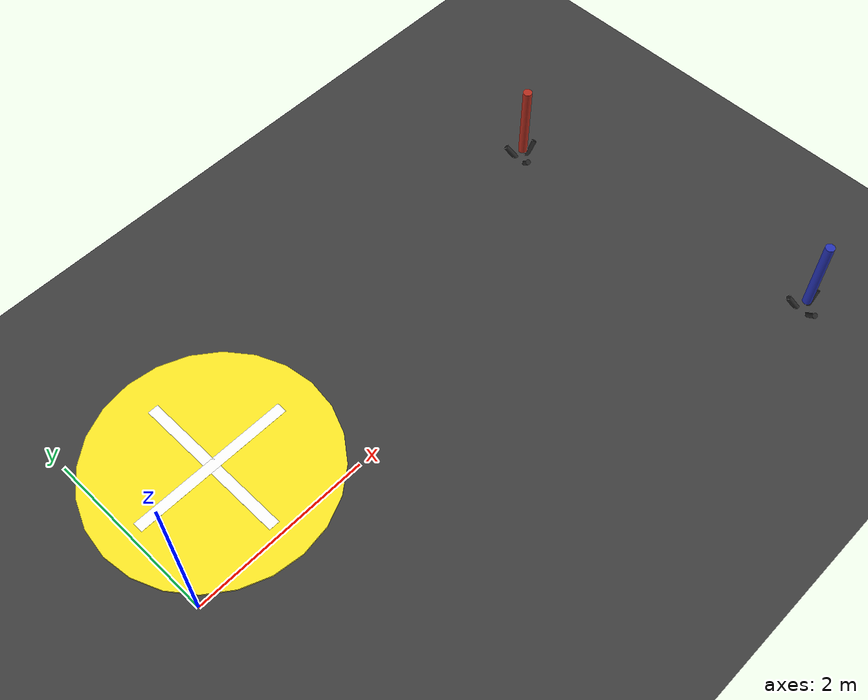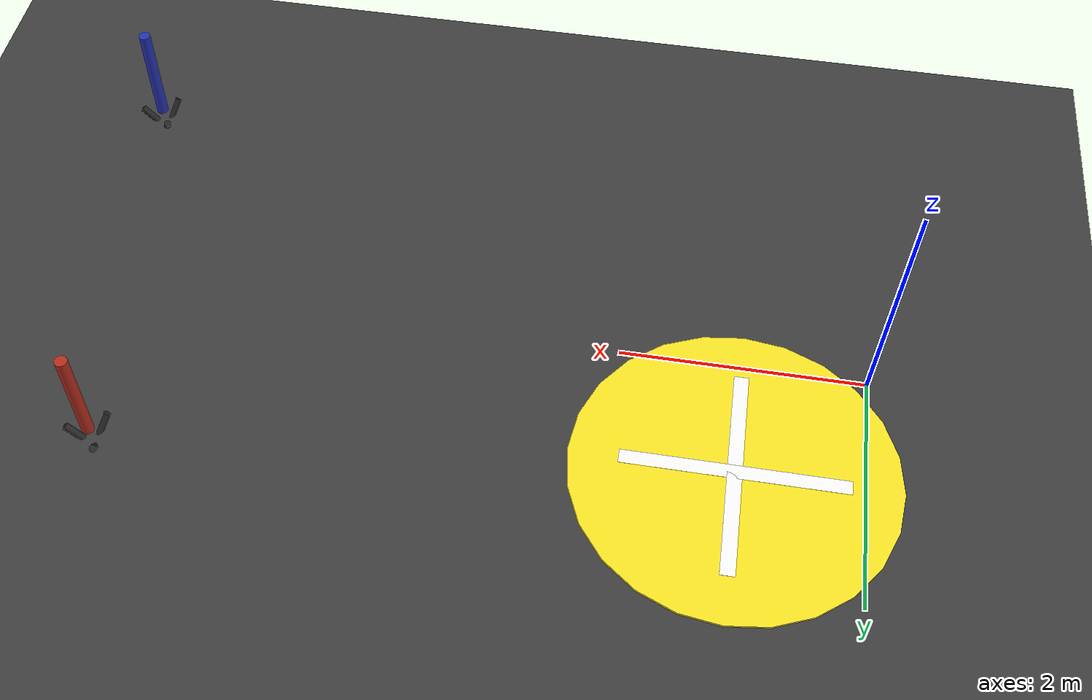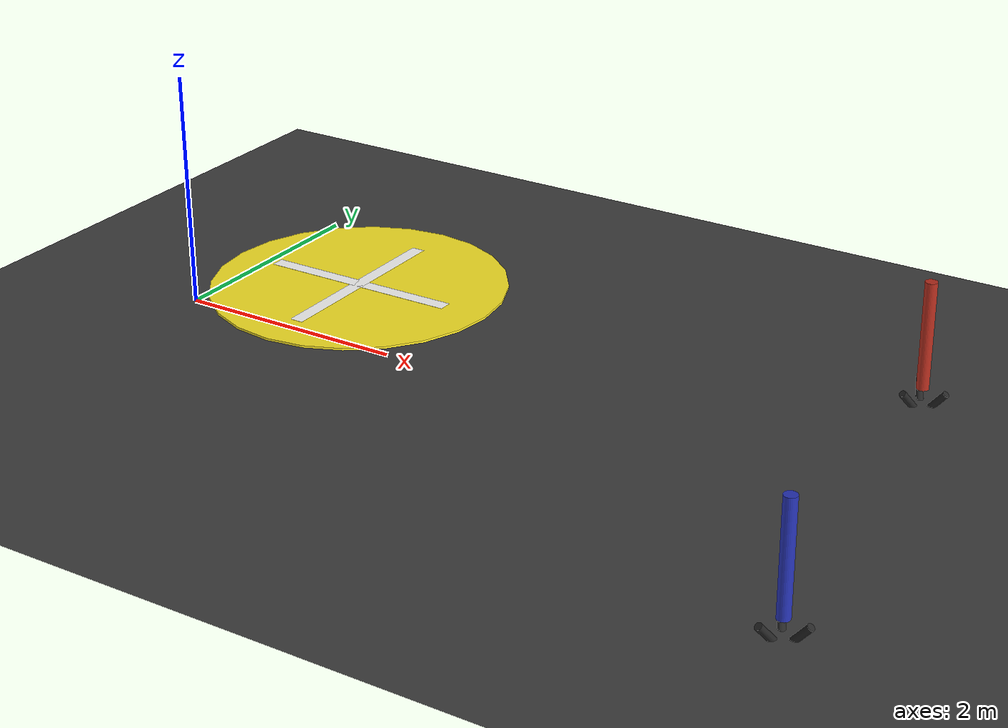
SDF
<?xml version="1.0" ?>
<sdf version="1.7">
  <world name="default">

    <!-- ========== 物理引擎 (与 PX4 SITL 兼容) ========== -->
    <gravity>0 0 -9.8066</gravity>
    <magnetic_field>6.0e-6 2.3e-5 -4.2e-5</magnetic_field>
    <physics name="default_physics" default="0" type="ode">
      <ode>
        <solver>
          <type>quick</type>
          <iters>10</iters>
          <sor>1.3</sor>
          <use_dynamic_moi_rescaling>0</use_dynamic_moi_rescaling>
        </solver>
        <constraints>
          <cfm>0</cfm>
          <erp>0.2</erp>
          <contact_max_correcting_vel>100</contact_max_correcting_vel>
          <contact_surface_layer>0.001</contact_surface_layer>
        </constraints>
      </ode>
      <max_step_size>0.004</max_step_size>
      <real_time_factor>1</real_time_factor>
      <real_time_update_rate>250</real_time_update_rate>
    </physics>

    <!-- ========== 场景全局光照 (关键: 消除默认黑场) ========== -->
    <scene>
      <ambient>0.65 0.65 0.65 1</ambient>
      <background>0.7 0.75 0.85 1</background>
      <shadows>true</shadows>
    </scene>

    <!-- 主平行太阳光 (高亮度 + 软阴影) -->
    <light name="sun" type="directional">
      <pose>0 0 10 0 0 0</pose>
      <diffuse>0.92 0.92 0.92 1</diffuse>
      <specular>0.3 0.3 0.3 1</specular>
      <direction>0.4 0.4 -0.9</direction>
      <cast_shadows>true</cast_shadows>
      <attenuation>
        <range>1000</range>
        <constant>0.9</constant>
        <linear>0.01</linear>
        <quadratic>0.001</quadratic>
      </attenuation>
    </light>

    <!-- 顶部暖白补光 (弱化物体底部死黑阴影) -->
    <light name="top_fill" type="point">
      <pose>0 0 9 0 0 0</pose>
      <diffuse>0.55 0.50 0.40 1</diffuse>
      <specular>0.1 0.1 0.1 1</specular>
      <cast_shadows>false</cast_shadows>
      <attenuation>
        <range>30</range>
        <constant>0.5</constant>
        <linear>0.05</linear>
        <quadratic>0.005</quadratic>
      </attenuation>
    </light>

    <!-- ========== 地面: 深灰色哑光大平面 ========== -->
    <model name="ground_plane">
      <static>true</static>
      <link name="link">
        <collision name="collision">
          <geometry>
            <plane>
              <normal>0 0 1</normal>
              <size>100 100</size>
            </plane>
          </geometry>
          <surface>
            <friction>
              <ode>
                <mu>50</mu>
                <mu2>50</mu2>
              </ode>
            </friction>
          </surface>
        </collision>
        <visual name="visual">
          <cast_shadows>false</cast_shadows>
          <geometry>
            <plane>
              <normal>0 0 1</normal>
              <size>100 100</size>
            </plane>
          </geometry>
          <material>
            <ambient>0.25 0.25 0.25 1</ambient>
            <diffuse>0.25 0.25 0.25 1</diffuse>
            <specular>0.0 0.0 0.0 1</specular>
          </material>
        </visual>
      </link>
    </model>

    <!-- 黄色起降平台 (无人机垂直正下方)                            -->
    <!-- 中心 (1, 1, 0.01), 圆柱 r=1.3 h=0.02                      -->
    <!-- 顶面白色十字标记 (两薄长方体, 厚 0.001m, z=0.021)          -->
    <model name="landing_pad">
      <static>true</static>
      <pose>1 1 0 0 0 0</pose>
      <link name="link">
        <!-- 平台主体 -->
        <collision name="pad_collision">
          <pose>0 0 0.01 0 0 0</pose>
          <geometry>
            <cylinder>
              <radius>1.3</radius>
              <length>0.02</length>
            </cylinder>
          </geometry>
        </collision>
        <visual name="pad_visual">
          <pose>0 0 0.01 0 0 0</pose>
          <geometry>
            <cylinder>
              <radius>1.3</radius>
              <length>0.02</length>
            </cylinder>
          </geometry>
          <material>
            <ambient>1.0 0.92 0.15 1</ambient>
            <diffuse>1.0 0.92 0.15 1</diffuse>
            <specular>0.05 0.05 0.05 1</specular>
          </material>
        </visual>

        <!-- 白色十字标记 - 横条 (沿 X 轴) -->
        <visual name="cross_x">
          <pose>0 0 0.0215 0 0 0</pose>
          <geometry>
            <box>
              <size>1.8 0.12 0.001</size>
            </box>
          </geometry>
          <material>
            <ambient>1 1 1 1</ambient>
            <diffuse>1 1 1 1</diffuse>
            <specular>0.1 0.1 0.1 1</specular>
          </material>
        </visual>
        <!-- 白色十字标记 - 竖条 (沿 Y 轴) -->
        <visual name="cross_y">
          <pose>0 0 0.0215 0 0 0</pose>
          <geometry>
            <box>
              <size>0.12 1.8 0.001</size>
            </box>
          </geometry>
          <material>
            <ambient>1 1 1 1</ambient>
            <diffuse>1 1 1 1</diffuse>
            <specular>0.1 0.1 0.1 1</specular>
          </material>
        </visual>
      </link>
    </model>

    <!-- 障碍物 A: 红杆 + 三叉黑色支架                              -->
    <!-- 位置 (6, 1.5, 0.12)   - 无人机前方约5m                       -->
    <!-- 主杆: 长圆柱 RGB(0.72,0.18,0.12), 长 0.9 半径 0.05         -->
    <!-- 支架: 3 根细圆柱 RGB(0.15,0.15,0.15) 半径 0.03, 120° 分叉  -->
    <model name="red_tripod_A">
      <static>true</static>
      <pose>6 1.5 0.12 0 0 0</pose>
      <link name="link">
        <!-- 主杆 (沿 Z 轴竖直) -->
        <collision name="pole_collision">
          <pose>0 0 0.45 0 0 0</pose>
          <geometry>
            <cylinder>
              <radius>0.05</radius>
              <length>0.9</length>
            </cylinder>
          </geometry>
        </collision>
        <visual name="pole_visual">
          <pose>0 0 0.45 0 0 0</pose>
          <geometry>
            <cylinder>
              <radius>0.05</radius>
              <length>0.9</length>
            </cylinder>
          </geometry>
          <material>
            <ambient>0.72 0.18 0.12 1</ambient>
            <diffuse>0.72 0.18 0.12 1</diffuse>
            <specular>0.08 0.08 0.08 1</specular>
          </material>
        </visual>

        <!-- 支架 1 (0°方向, 向 +X 倾斜) -->
        <collision name="leg1_collision">
          <pose>0.0964 0.0000 -0.1149 0 0.6981 0.0000</pose>
          <geometry>
            <cylinder><radius>0.03</radius><length>0.3</length></cylinder>
          </geometry>
        </collision>
        <visual name="leg1_visual">
          <pose>0.0964 0.0000 -0.1149 0 0.6981 0.0000</pose>
          <geometry>
            <cylinder><radius>0.03</radius><length>0.3</length></cylinder>
          </geometry>
          <material>
            <ambient>0.15 0.15 0.15 1</ambient>
            <diffuse>0.15 0.15 0.15 1</diffuse>
            <specular>0.05 0.05 0.05 1</specular>
          </material>
        </visual>

        <!-- 支架 2 (120°方向) -->
        <collision name="leg2_collision">
          <pose>-0.0482 0.0835 -0.1149 0 0.6981 2.0944</pose>
          <geometry>
            <cylinder><radius>0.03</radius><length>0.3</length></cylinder>
          </geometry>
        </collision>
        <visual name="leg2_visual">
          <pose>-0.0482 0.0835 -0.1149 0 0.6981 2.0944</pose>
          <geometry>
            <cylinder><radius>0.03</radius><length>0.3</length></cylinder>
          </geometry>
          <material>
            <ambient>0.15 0.15 0.15 1</ambient>
            <diffuse>0.15 0.15 0.15 1</diffuse>
            <specular>0.05 0.05 0.05 1</specular>
          </material>
        </visual>

        <!-- 支架 3 (240°方向) -->
        <collision name="leg3_collision">
          <pose>-0.0482 -0.0835 -0.1149 0 0.6981 4.1888</pose>
          <geometry>
            <cylinder><radius>0.03</radius><length>0.3</length></cylinder>
          </geometry>
        </collision>
        <visual name="leg3_visual">
          <pose>-0.0482 -0.0835 -0.1149 0 0.6981 4.1888</pose>
          <geometry>
            <cylinder><radius>0.03</radius><length>0.3</length></cylinder>
          </geometry>
          <material>
            <ambient>0.15 0.15 0.15 1</ambient>
            <diffuse>0.15 0.15 0.15 1</diffuse>
            <specular>0.05 0.05 0.05 1</specular>
          </material>
        </visual>
      </link>
    </model>

    <!-- 障碍物 B: 蓝杆 + 三叉黑色支架, 错落摆放                -->
    <!-- 位置 (6.5, -2, 0.12)   - 无人机前方偏右约5.5m                -->
    <model name="blue_tripod_B">
      <static>true</static>
      <pose>6.5 -2 0.12 0 0 0</pose>
      <link name="link">
        <collision name="pole_collision">
          <pose>0 0 0.45 0 0 0</pose>
          <geometry>
            <cylinder><radius>0.05</radius><length>0.9</length></cylinder>
          </geometry>
        </collision>
        <visual name="pole_visual">
          <pose>0 0 0.45 0 0 0</pose>
          <geometry>
            <cylinder><radius>0.05</radius><length>0.9</length></cylinder>
          </geometry>
          <material>
            <ambient>0.15 0.20 0.72 1</ambient>
            <diffuse>0.15 0.20 0.72 1</diffuse>
            <specular>0.08 0.08 0.08 1</specular>
          </material>
        </visual>

        <collision name="leg1_collision">
          <pose>0.0964 0.0000 -0.1149 0 0.6981 0.0000</pose>
          <geometry>
            <cylinder><radius>0.03</radius><length>0.3</length></cylinder>
          </geometry>
        </collision>
        <visual name="leg1_visual">
          <pose>0.0964 0.0000 -0.1149 0 0.6981 0.0000</pose>
          <geometry>
            <cylinder><radius>0.03</radius><length>0.3</length></cylinder>
          </geometry>
          <material>
            <ambient>0.15 0.15 0.15 1</ambient>
            <diffuse>0.15 0.15 0.15 1</diffuse>
            <specular>0.05 0.05 0.05 1</specular>
          </material>
        </visual>

        <collision name="leg2_collision">
          <pose>-0.0482 0.0835 -0.1149 0 0.6981 2.0944</pose>
          <geometry>
            <cylinder><radius>0.03</radius><length>0.3</length></cylinder>
          </geometry>
        </collision>
        <visual name="leg2_visual">
          <pose>-0.0482 0.0835 -0.1149 0 0.6981 2.0944</pose>
          <geometry>
            <cylinder><radius>0.03</radius><length>0.3</length></cylinder>
          </geometry>
          <material>
            <ambient>0.15 0.15 0.15 1</ambient>
            <diffuse>0.15 0.15 0.15 1</diffuse>
            <specular>0.05 0.05 0.05 1</specular>
          </material>
        </visual>

        <collision name="leg3_collision">
          <pose>-0.0482 -0.0835 -0.1149 0 0.6981 4.1888</pose>
          <geometry>
            <cylinder><radius>0.03</radius><length>0.3</length></cylinder>
          </geometry>
        </collision>
        <visual name="leg3_visual">
          <pose>-0.0482 -0.0835 -0.1149 0 0.6981 4.1888</pose>
          <geometry>
            <cylinder><radius>0.03</radius><length>0.3</length></cylinder>
          </geometry>
          <material>
            <ambient>0.15 0.15 0.15 1</ambient>
            <diffuse>0.15 0.15 0.15 1</diffuse>
            <specular>0.05 0.05 0.05 1</specular>
          </material>
        </visual>
      </link>
    </model>

  </world>
</sdf>
